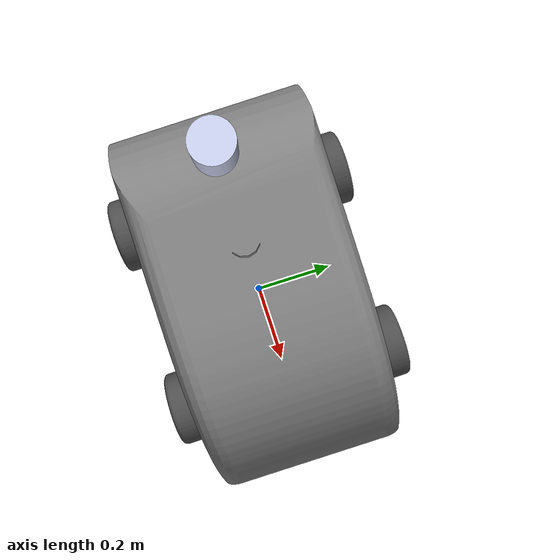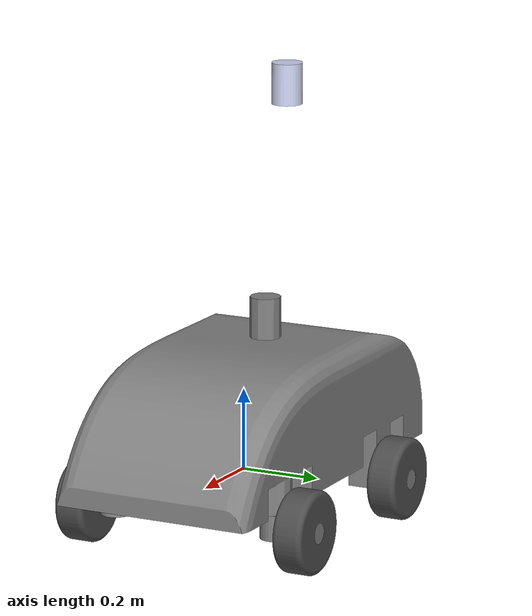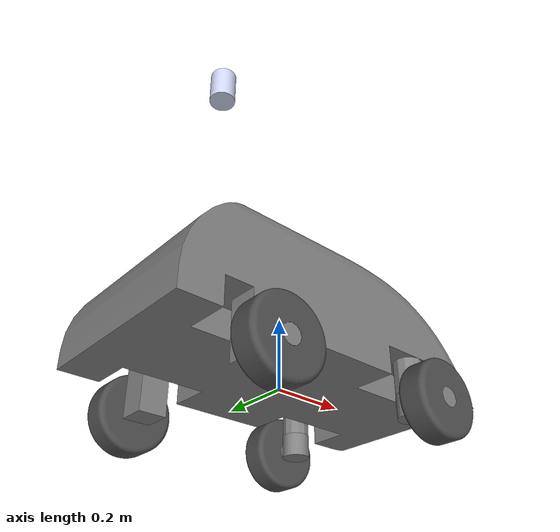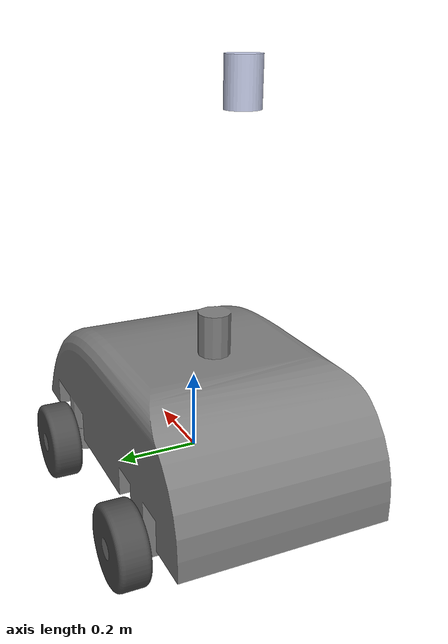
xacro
<?xml version="1.0" ?>
<robot
  name="car" xmlns:xacro="http://ros.org/wiki/xacro">
  <link name="dummy_link"></link>
  <link name="base_chassis_link">
    <inertial>
      <origin
        xyz="-0.028197 6.0249E-06 0.14038"
        rpy="0 0 0" />
      <mass
        value="111.25" />
      <inertia
        ixx="3.0938"
        ixy="-0.00024941"
        ixz="0.14304"
        iyy="7.6007"
        iyz="4.3992E-05"
        izz="9.096" />
    </inertial>
    <visual>
      <origin
        xyz="0 0 0"
        rpy="0 0 0" />
      <geometry>
        <mesh
          filename="package://car/meshes/base_chassis_link.STL" />
      </geometry>
      <material
        name="">
        <color
          rgba="0.49804 0.49804 0.49804 1" />
      </material>
    </visual>
    <collision>
      <origin
        xyz="0 0 0"
        rpy="0 0 0" />
      <geometry>
        <mesh
          filename="package://car/meshes/base_chassis_link.STL" />
      </geometry>
    </collision>
  </link>
  <joint name="dummy_joint" type="fixed">
    <origin rpy="0 0 0" xyz="0 0 0" />
    <parent link="dummy_link"/>
    <child link="base_chassis_link"/>
  </joint>
  <link
    name="rear_left_wheel_link">
    <inertial>
      <origin
        xyz="-1.2212E-15 0.0762 1.2768E-15"
        rpy="0 0 0" />
      <mass
        value="2.2737" />
      <inertia
        ixx="0.0072097"
        ixy="-1.7766E-17"
        ixz="2.5732E-35"
        iyy="0.012285"
        iyz="-1.1755E-35"
        izz="0.0072097" />
    </inertial>
    <visual>
      <origin
        xyz="0 0 0"
        rpy="0 0 0" />
      <geometry>
        <mesh
          filename="package://car/meshes/rear_left_wheel_link.STL" />
      </geometry>
      <material
        name="">
        <color
          rgba="0.29804 0.29804 0.29804 1" />
      </material>
    </visual>
    <collision>
      <origin
        xyz="0 0 0"
        rpy="0 0 0" />
      <geometry>
        <mesh
          filename="package://car/meshes/rear_left_wheel_link.STL" />
      </geometry>
    </collision>
  </link>
  <joint
    name="rear_left_diff_joint"
    type="continuous">
    <origin
      xyz="-0.2558 0.2159 -0.0508"
      rpy="0 0 0" />
    <parent
      link="base_chassis_link" />
    <child
      link="rear_left_wheel_link" />
    <axis
      xyz="0 1 0" />
    <limit
      effort="5"
      velocity="200" />
  </joint>
  <link
    name="rear_right_wheel_link">
    <inertial>
      <origin
        xyz="7.2164E-16 -0.0762 1.3323E-15"
        rpy="0 0 0" />
      <mass
        value="2.2737" />
      <inertia
        ixx="0.0072097"
        ixy="-1.7766E-17"
        ixz="1.3838E-36"
        iyy="0.012285"
        iyz="-1.3395E-35"
        izz="0.0072097" />
    </inertial>
    <visual>
      <origin
        xyz="0 0 0"
        rpy="0 0 0" />
      <geometry>
        <mesh
          filename="package://car/meshes/rear_right_wheel_link.STL" />
      </geometry>
      <material
        name="">
        <color
          rgba="0.29804 0.29804 0.29804 1" />
      </material>
    </visual>
    <collision>
      <origin
        xyz="0 0 0"
        rpy="0 0 0" />
      <geometry>
        <mesh
          filename="package://car/meshes/rear_right_wheel_link.STL" />
      </geometry>
    </collision>
  </link>
  <joint
    name="rear_right_diff_joint"
    type="continuous">
    <origin
      xyz="-0.2558 -0.2159 -0.0508"
      rpy="0 0 0" />
    <parent
      link="base_chassis_link" />
    <child
      link="rear_right_wheel_link" />
    <axis
      xyz="0 -1 0" />
    <limit
      effort="5"
      velocity="200" />
  </joint>
  <link
    name="front_left_link">
    <inertial>
      <origin
        xyz="-2.0683E-08 0.026599 0.0040991"
        rpy="0 0 0" />
      <mass
        value="0.41136" />
      <inertia
        ixx="0.00081789"
        ixy="2.9547E-10"
        ixz="-1.8121E-10"
        iyy="0.0002369"
        iyz="4.4852E-05"
        izz="0.00082216" />
    </inertial>
    <visual>
      <origin
        xyz="0 0 0"
        rpy="0 0 0" />
      <geometry>
        <mesh
          filename="package://car/meshes/front_left_link.STL" />
      </geometry>
      <material
        name="">
        <color
          rgba="0.49804 0.49804 0.49804 1" />
      </material>
    </visual>
    <collision>
      <origin
        xyz="0 0 0"
        rpy="0 0 0" />
      <geometry>
        <mesh
          filename="package://car/meshes/front_left_link.STL" />
      </geometry>
    </collision>
  </link>
  <joint
    name="front_left_link_joint"
    type="revolute">
    <origin
      xyz="0.2522 0.2159 -0.0508"
      rpy="0 0 0" />
    <parent
      link="base_chassis_link" />
    <child
      link="front_left_link" />
    <axis
      xyz="0 0 1" />
    <limit
      lower="-2"
      upper="2"
      effort="100"
      velocity="100" />
  </joint>
  <link
    name="front_left_wheel_link">
    <inertial>
      <origin
        xyz="5.55111512312578E-17 0.0762 -2.08166817117217E-17"
        rpy="0 0 0" />
      <mass
        value="2.27370840064708" />
      <inertia
        ixx="0.00720966812251228"
        ixy="-6.12053048558235E-19"
        ixz="1.57219902922239E-20"
        iyy="0.0122845286882287"
        iyz="8.4926288980813E-20"
        izz="0.00720966812251228" />
    </inertial>
    <visual>
      <origin
        xyz="0 0 0"
        rpy="0 0 0" />
      <geometry>
        <mesh
          filename="package://car/meshes/front_left_wheel_link.STL" />
      </geometry>
      <material
        name="">
        <color
          rgba="0.298039215686275 0.298039215686275 0.298039215686275 1" />
      </material>
    </visual>
    <collision>
      <origin
        xyz="0 0 0"
        rpy="0 0 0" />
      <geometry>
        <mesh
          filename="package://car/meshes/front_left_wheel_link.STL" />
      </geometry>
    </collision>
  </link>
  <joint
    name="front_left_wheel_joint"
    type="continuous">
    <origin
      xyz="0 0 0"
      rpy="0 0 0" />
    <parent
      link="front_left_link" />
    <child
      link="front_left_wheel_link" />
    <axis
      xyz="0 1 0" />
    <limit
      effort="5"
      velocity="200" />
  </joint>
  <link
    name="front_right_link">
    <inertial>
      <origin
        xyz="2.0683E-08 -0.026599 0.0040991"
        rpy="0 0 0" />
      <mass
        value="0.41136" />
      <inertia
        ixx="0.00081789"
        ixy="2.9547E-10"
        ixz="1.8121E-10"
        iyy="0.0002369"
        iyz="-4.4852E-05"
        izz="0.00082216" />
    </inertial>
    <visual>
      <origin
        xyz="0 0 0"
        rpy="0 0 0" />
      <geometry>
        <mesh
          filename="package://car/meshes/front_right_link.STL" />
      </geometry>
      <material
        name="">
        <color
          rgba="0.49804 0.49804 0.49804 1" />
      </material>
    </visual>
    <collision>
      <origin
        xyz="0 0 0"
        rpy="0 0 0" />
      <geometry>
        <mesh
          filename="package://car/meshes/front_right_link.STL" />
      </geometry>
    </collision>
  </link>
  <joint
    name="front_right_link_joint"
    type="revolute">
    <origin
      xyz="0.2522 -0.2159 -0.0508"
      rpy="0 0 0" />
    <parent
      link="base_chassis_link" />
    <child
      link="front_right_link" />
    <axis
      xyz="0 0 1" />
    <limit
      lower="-2"
      upper="2"
      effort="100"
      velocity="100" />
  </joint>
  <link
    name="front_right_wheel_link">
    <inertial>
      <origin
        xyz="-7.2164E-16 -0.0762 1.3323E-15"
        rpy="0 0 0" />
      <mass
        value="2.2737" />
      <inertia
        ixx="0.0072097"
        ixy="1.7672E-17"
        ixz="-2.2965E-35"
        iyy="0.012285"
        iyz="-3.5265E-35"
        izz="0.0072097" />
    </inertial>
    <visual>
      <origin
        xyz="0 0 0"
        rpy="0 0 0" />
      <geometry>
        <mesh
          filename="package://car/meshes/front_right_wheel_link.STL" />
      </geometry>
      <material
        name="">
        <color
          rgba="0.29804 0.29804 0.29804 1" />
      </material>
    </visual>
    <collision>
      <origin
        xyz="0 0 0"
        rpy="0 0 0" />
      <geometry>
        <mesh
          filename="package://car/meshes/front_right_wheel_link.STL" />
      </geometry>
    </collision>
  </link>
  <joint
    name="front_right_wheel_joint"
    type="continuous">
    <origin
      xyz="0 0 0"
      rpy="0 0 0" />
    <parent
      link="front_right_link" />
    <child
      link="front_right_wheel_link" />
    <axis
      xyz="0 -1 0" />
    <limit
      effort="5"
      velocity="200" />
  </joint>
  <link name="Lidar_link">
    <inertial>
      <origin
        xyz="-0.1143 0 0.4572"
        rpy="0 0 0" />
      <mass
        value="0.46333" />
      <inertia
        ixx="0.00056671"
        ixy="0"
        ixz="-2.9387E-36"
        iyy="0.00056671"
        iyz="-1.733E-36"
        izz="0.00033629" />
    </inertial>
    <visual>
      <origin
        xyz="0 0 0"
        rpy="0 0 0" />
      <geometry>
        <mesh
          filename="package://car/meshes/Lidar_link.STL" />
      </geometry>
      <material
        name="">
        <color
          rgba="0.79216 0.81961 0.93333 1" />
      </material>
    </visual>
    <collision>
      <origin
        xyz="0 0 0"
        rpy="0 0 0" />
      <geometry>
        <mesh
          filename="package://car/meshes/Lidar_link.STL" />
      </geometry>
    </collision>
  </link>
  <joint
    name="lidar_joint"
    type="fixed">
    <origin
      xyz="-0.1143 0 0.4572"
      rpy="0 0 0" />
    <parent
      link="base_chassis_link" />
    <child
      link="Lidar_link" />
    <axis
      xyz="0 0 0" />
  </joint>

 <ros2_control name="GazeboSystem" type="system">
 <hardware>
     <plugin>gazebo_ros2_control/GazeboSystem</plugin>
 </hardware>

 <joint name="rear_left_diff_joint">
     <command_interface name="velocity">
         <param name="min">-1000.0</param>
         <param name="max">1000.0</param>
     </command_interface>
     <state_interface name="position"/>
     <state_interface name="velocity"/>
 </joint>

  <joint name="rear_right_diff_joint">
     <command_interface name="velocity">
         <param name="min">-1000.0</param>
         <param name="max">1000.0</param>
     </command_interface>
     <state_interface name="position"/>
     <state_interface name="velocity"/>
 </joint>

 <joint name="front_left_link_joint">
     <command_interface name="position">
         <param name="min">-3.14</param>
         <param name="max">3.14</param>
     </command_interface>
     <state_interface name="position"/>
     <state_interface name="velocity"/>
 </joint>
  <joint name="front_right_link_joint">
     <command_interface name="position">
         <param name="min">-3.14</param>
         <param name="max">3.14</param>
     </command_interface>
     <state_interface name="position"/>
     <state_interface name="velocity"/>
 </joint>
 </ros2_control>

 <gazebo>
    <plugin filename="libgazebo_ros2_control.so" name="gazebo_ros2_control">
        <parameters>$(find car)/config/control.yaml</parameters>
    </plugin>
 </gazebo>
 <gazebo reference="Lidar_link">
  <sensor name="lidar" type="ray">
    <pose>0 0 0 0 0 0</pose>
    <always_on>true</always_on>
    <visualize>true</visualize>
    <update_rate>5</update_rate>
    <ray>
      <scan>
        <horizontal>
          <samples>360</samples>
          <resolution>1.00000</resolution>
          <min_angle>0.000000</min_angle>
          <max_angle>6.280000</max_angle>
        </horizontal>
      </scan>
      <range>
        <min>0.120000</min>
        <max>3.5</max>
        <resolution>0.015000</resolution>
      </range>
      <noise>
        <type>gaussian</type>
        <mean>0.0</mean>
        <stddev>0.01</stddev>
      </noise>
    </ray>
    <plugin name="scan" filename="libgazebo_ros_ray_sensor.so">
      <ros>
        <remapping>~/out:=scan</remapping>
      </ros>
      <output_type>sensor_msgs/LaserScan</output_type>
      <frame_name>Lidar_link</frame_name>
    </plugin>
  </sensor>
  </gazebo>
  <gazebo reference="base_chassis_link">
  <gravity>true</gravity>
  <sensor name="imu_sensor" type="imu">
    <always_on>true</always_on>
    <update_rate>100</update_rate>
    <visualize>true</visualize>
    <topic>__default_topic__</topic>
    <plugin filename="libgazebo_ros_imu_sensor.so" name="imu_plugin">
      <topicName>imu</topicName>
      <bodyName>base_chassis_link</bodyName>
      <updateRateHZ>10.0</updateRateHZ>
      <gaussianNoise>0.0</gaussianNoise>
      <xyzOffset>0 0 0</xyzOffset>
      <rpyOffset>0 0 0</rpyOffset>
      <frameName>base_chassis_link</frameName>
      <initialOrientationAsReference>false</initialOrientationAsReference>
    </plugin>
    <pose>0 0 0 0 0 0</pose>
  </sensor>
</gazebo>
</robot>
